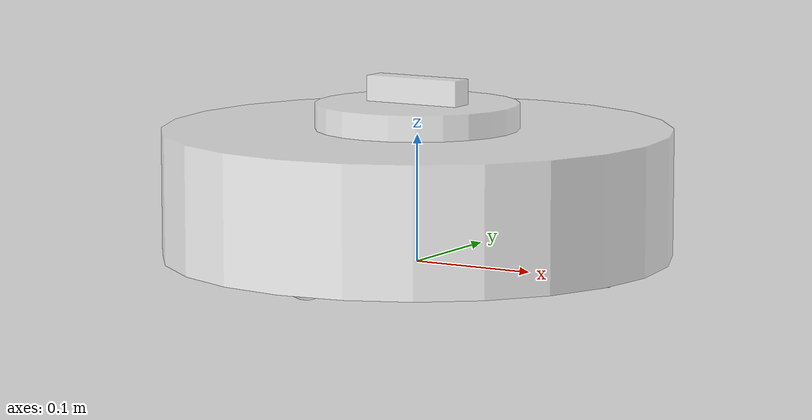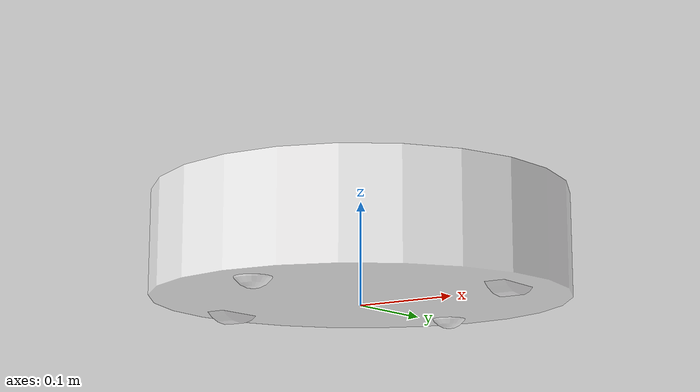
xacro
<?xml version="1.0"?>
<robot xmlns:xacro="http://www.ros.org/wiki/xacro" name="robot_name">
    <!-- 引入宏定义文件 -->
    <xacro:include filename="./item.xacro"/>

    <!-- 虚拟支撑 -->

    <xacro:linker_support
        name="support"
    />

    <!-- 主体 -->
    <xacro:linker_cylinder
        name="body"
        radius="0.2"
        length="0.1"
        origin_rpy_r="0.0"
        origin_rpy_p="0.0"
        origin_rpy_y="0.0"
        color_r="1.0"
        color_g="1.0"
        color_b="1.0"
        color_a="0.8"
        mass="0.5"
    />
    <xacro:joint_fixed
        name="body_j"
        parent="support"
        child="body"
        origin_xyz_x="0.0"
        origin_xyz_y="0.0"
        origin_xyz_z="0.055"
        origin_rpy_r="0.0"
        origin_rpy_p="0.0"
        origin_rpy_y="0.0"
    />

    <!-- 左轮 -->
    <xacro:linker_cylinder
        name="left_wheel"
        radius="0.04"
        length="0.02"
        origin_rpy_r="0.0"
        origin_rpy_p="1.57"
        origin_rpy_y="0.0"
        color_r="1.0"
        color_g="1.0"
        color_b="1.0"
        color_a="0.6"
        mass="0.04"
    />
    <xacro:joint_continuous
        name="left_wheel_j"
        parent="body"
        child="left_wheel"
        origin_xyz_x="0.16"
        origin_xyz_y="0.0"
        origin_xyz_z="-0.02"
        origin_rpy_r="0.0"
        origin_rpy_p="0.0"
        origin_rpy_y="0.0"
        axis_x="1.0"
        axis_y="0.0"
        axis_z="0.0"
    />

    <!-- 右轮 -->
    <xacro:linker_cylinder
        name="right_wheel"
        radius="0.04"
        length="0.02"
        origin_rpy_r="0.0"
        origin_rpy_p="1.57"
        origin_rpy_y="0.0"
        color_r="1.0"
        color_g="1.0"
        color_b="1.0"
        color_a="0.6"
        mass="0.04"
    />
    <xacro:joint_continuous
        name="right_wheel_j"
        parent="body"
        child="right_wheel"
        origin_xyz_x="-0.16"
        origin_xyz_y="0.0"
        origin_xyz_z="-0.02"
        origin_rpy_r="0.0"
        origin_rpy_p="0.0"
        origin_rpy_y="0.0"
        axis_x="1.0"
        axis_y="0.0"
        axis_z="0.0"
    />

    <!-- 前万向轮 -->
    <xacro:linker_sphere
        name="front_wheel"
        radius="0.02"
        color_r="1.0"
        color_g="1.0"
        color_b="1.0"
        color_a="0.5"
        mass="0.02"
    />
    <xacro:joint_fixed
        name="front_wheel_j"
        parent="body"
        child="front_wheel"
        origin_xyz_x="0.0"
        origin_xyz_y="0.16"
        origin_xyz_z="-0.04"
        origin_rpy_r="0.0"
        origin_rpy_p="0.0"
        origin_rpy_y="0.0"
    />

    <!-- 后万向轮 -->
    <xacro:linker_sphere
        name="back_wheel"
        radius="0.02"
        color_r="1.0"
        color_g="1.0"
        color_b="1.0"
        color_a="0.5"
        mass="0.02"
    />
    <xacro:joint_fixed
        name="back_wheel_j"
        parent="body"
        child="back_wheel"
        origin_xyz_x="0.0"
        origin_xyz_y="-0.16"
        origin_xyz_z="-0.04"
        origin_rpy_r="0.0"
        origin_rpy_p="0.0"
        origin_rpy_y="0.0"
    />

    <!-- IMU -->
    <xacro:linker_box
        name="imu"
        length="0.04"
        width="0.02"
        height="0.01"
        color_r="1.0"
        color_g="1.0"
        color_b="1.0"
        color_a="0.6"
        mass="0.02"
    />
    <xacro:joint_fixed
        name="imu_j"
        parent="body"
        child="imu"
        origin_xyz_x="0.0"
        origin_xyz_y="0.0"
        origin_xyz_z="0.04"
        origin_rpy_r="0.0"
        origin_rpy_p="0.0"
        origin_rpy_y="0.0"
    />

    <!-- 雷达 -->
    <xacro:linker_cylinder
        name="laser"
        radius="0.08"
        length="0.02"
        origin_rpy_r="0.0"
        origin_rpy_p="0.0"
        origin_rpy_y="0.0"
        color_r="1.0"
        color_g="1.0"
        color_b="1.0"
        color_a="0.6"
        mass="0.08"
    />
    <xacro:joint_fixed
        name="laser_j"
        parent="body"
        child="laser"
        origin_xyz_x="0.0"
        origin_xyz_y="0.0"
        origin_xyz_z="0.06"
        origin_rpy_r="0.0"
        origin_rpy_p="0.0"
        origin_rpy_y="0.0"
    />

    <!-- 深度相机 -->
    <xacro:linker_box
        name="camera"
        length="0.02"
        width="0.08"
        height="0.02"
        color_r="1.0"
        color_g="1.0"
        color_b="1.0"
        color_a="0.6"
        mass="0.08"
    />
    <xacro:joint_fixed
        name="camera_j"
        parent="body"
        child="camera"
        origin_xyz_x="0.0"
        origin_xyz_y="0.0"
        origin_xyz_z="0.08"
        origin_rpy_r="0.0"
        origin_rpy_p="0.0"
        origin_rpy_y="-1.57"
    />

    <!-- 深度相机视角修正 -->
    <xacro:linker_support
        name="camera_optical"
    />
    <xacro:joint_fixed
        name="camera_optical_j"
        parent="body"
        child="camera_optical"
        origin_xyz_x="0.0"
        origin_xyz_y="0.0"
        origin_xyz_z="0.08"
        origin_rpy_r="-1.57"
        origin_rpy_p="0.0"
        origin_rpy_y="-3.14"
    />

    <!-- 差速控制 -->
    <xacro:diffdriver
        name="diffdriver"
        namespace="/"
        left_joint="left_wheel_j"
        right_joint="right_wheel_j"
        wheel_separation="0.32"
        wheel_diameter="0.04"
        odometry_frame="odom"
        robot_base_frame="support"
    />

    <!-- IMU -->
    <xacro:imudriver
        reference="imu"
        name="imu"
        namespace="/"
    />

    <!-- 激光雷达 -->
    <xacro:laserdriver
        reference="laser"
        name="laser"
        pose_r="0.0"
        pose_p="0.0"
        pose_y="0.0"
        namespace="/"
        frame_name="laser"
    />

    <!-- 深度相机 -->
    <xacro:cameradriver
        reference="camera"
        name="camera"
        namespace="/"
        frame_name="camera_optical"
    />

</robot>

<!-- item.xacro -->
<robot xmlns:xacro="http://www.ros.org/wiki/xacro" name="robot_name">

  <!-- 宏定义：支撑 -->
  <xacro:macro name="linker_support" params="name">
    <!-- 零件描述 -->
    <link name="${name}">
      <!-- 外观描述 -->
      <visual>
        <!-- 相对坐标系 -->
        <origin xyz="0.0 0.0 0.0" rpy="0.0 0.0 0.0"/>
        <!-- 几何形状 -->
        <geometry>
          <!-- 长方体 -->
          <box size="0.0 0.0 0.0"/>
        </geometry>
        <!-- 材质 -->
        <material name="material_${name}">
          <!-- 颜色 -->
          <color rgba="0.0 0.0 0.0 0.0"/>
        </material>
      </visual>
    </link>
  </xacro:macro>

  <!-- 宏定义：方形零件 -->
  <xacro:macro name="linker_box" params="name length width height color_r color_g color_b color_a mass">
    <!-- 零件描述 -->
    <link name="${name}">
      <!-- 外观描述 -->
      <visual>
        <!-- 相对坐标系 -->
        <origin xyz="0.0 0.0 0.0" rpy="0.0 0.0 0.0"/>
        <!-- 几何形状 -->
        <geometry>
          <!-- 长方体 -->
          <box size="${length} ${width} ${height}"/>
        </geometry>
        <!-- 材质 -->
        <material name="material_${name}">
          <!-- 颜色 -->
          <color rgba="${color_r} ${color_g} ${color_b} ${color_a}"/>
        </material>
      </visual>
      <!-- 物理描述 -->
      <collision>
        <!-- 相对坐标系 -->
        <origin xyz="0.0 0.0 0.0" rpy="0.0 0.0 0.0"/>
        <!-- 几何形状 -->
        <geometry>
          <!-- 长方体 -->
          <box size="${length} ${width} ${height}"/>
        </geometry>
        <!-- 材质 -->
        <material name="material_${name}">
          <!-- 颜色 -->
          <color rgba="${color_r} ${color_g} ${color_b} ${color_a}"/>
        </material>
      </collision>
      <!-- 物理属性 -->
      <inertial>
        <mass value="${mass}"/>
        <inertia ixx="${(mass/12)*(height*height+width*width)}" ixy="0.0" ixz="0.0" iyy="${(mass/12)*(length*length+width*width)}" iyz="0.0" izz="${(mass/12)*(length*length+height*height)}"/>
      </inertial>
    </link>
  </xacro:macro>

  <!-- 宏定义：圆柱形零件 -->
  <xacro:macro name="linker_cylinder" params="name radius length origin_rpy_r origin_rpy_p origin_rpy_y color_r color_g color_b color_a mass">
    <!-- 零件描述 -->
    <link name="${name}">
      <!-- 外观描述 -->
      <visual>
        <!-- 相对坐标系 -->
        <origin xyz="0.0 0.0 0.0" rpy="${origin_rpy_r} ${origin_rpy_p} ${origin_rpy_y}"/>
        <!-- 几何形状 -->
        <geometry>
          <!-- 圆柱体 -->
          <cylinder radius="${radius}" length="${length}"/>
        </geometry>
        <!-- 材质 -->
        <material name="material_${name}">
          <!-- 颜色 -->
          <color rgba="${color_r} ${color_g} ${color_b} ${color_a}"/>
        </material>
      </visual>
      <!-- 物理描述 -->
      <collision>
        <!-- 相对坐标系 -->
        <origin xyz="0.0 0.0 0.0" rpy="${origin_rpy_r} ${origin_rpy_p} ${origin_rpy_y}"/>
        <!-- 几何形状 -->
        <geometry>
          <!-- 圆柱体 -->
          <cylinder radius="${radius}" length="${length}"/>
        </geometry>
        <!-- 材质 -->
        <material name="material_${name}">
          <!-- 颜色 -->
          <color rgba="${color_r} ${color_g} ${color_b} ${color_a}"/>
        </material>
      </collision>
      <!-- 物理属性 -->
      <inertial>
        <mass value="${mass}"/>
        <inertia ixx="${(mass/12)*(3*radius*radius+length*length)}" ixy="0.0" ixz="0.0" iyy="${(mass/12)*(3*radius*radius+length*length)}" iyz="0.0" izz="${(mass/2)*(radius*radius)}"/>
      </inertial>
    </link>
  </xacro:macro>

  <!-- 宏定义：球形零件 -->
  <xacro:macro name="linker_sphere" params="name radius color_r color_g color_b color_a mass">
    <!-- 零件描述 -->
    <link name="${name}">
      <!-- 外观描述 -->
      <visual>
        <!-- 相对坐标系 -->
        <origin xyz="0.0 0.0 0.0" rpy="0.0 0.0 0.0"/>
        <!-- 几何形状 -->
        <geometry>
          <!-- 球体 -->
          <sphere radius="${radius}"/>
        </geometry>
        <!-- 材质 -->
        <material name="material_${name}">
          <!-- 颜色 -->
          <color rgba="${color_r} ${color_g} ${color_b} ${color_a}"/>
        </material>
      </visual>
      <!-- 物理描述 -->
      <collision>
        <!-- 相对坐标系 -->
        <origin xyz="0.0 0.0 0.0" rpy="0.0 0.0 0.0"/>
        <!-- 几何形状 -->
        <geometry>
          <!-- 球体 -->
          <sphere radius="${radius}"/>
        </geometry>
        <!-- 材质 -->
        <material name="material_${name}">
          <!-- 颜色 -->
          <color rgba="${color_r} ${color_g} ${color_b} ${color_a}"/>
        </material>
      </collision>
      <!-- 物理属性 -->
      <inertial>
        <mass value="${mass}"/>
        <inertia ixx="${(2/5)*mass*(radius*radius)}" ixy="0.0" ixz="0.0" iyy="${(2/5)*mass*(radius*radius)}" iyz="0.0" izz="${(2/5)*mass*(radius*radius)}"/>
      </inertial>
    </link>
  </xacro:macro>

  <!-- 宏定义：固定连接 -->
  <xacro:macro name="joint_fixed" params="name parent child origin_xyz_x origin_xyz_y origin_xyz_z origin_rpy_r origin_rpy_p origin_rpy_y">
  <!-- 固定连接 -->
    <joint name="${name}" type="fixed">
        <!-- 父对象 -->
        <parent link="${parent}"/>
        <!-- 子对象 -->
        <child link="${child}"/>
        <!-- 固定位置 -->
        <origin xyz="${origin_xyz_x} ${origin_xyz_y} ${origin_xyz_z}" rpy="${origin_rpy_r} ${origin_rpy_p} ${origin_rpy_y}"/>
    </joint>
  </xacro:macro>

  <!-- 宏定义：连续连接 -->
  <xacro:macro name="joint_continuous" params="name parent child origin_xyz_x origin_xyz_y origin_xyz_z origin_rpy_r origin_rpy_p origin_rpy_y axis_x axis_y axis_z">
  <!-- 连续连接 -->
    <joint name="${name}" type="continuous">
        <!-- 父对象 -->
        <parent link="${parent}"/>
        <!-- 子对象 -->
        <child link="${child}"/>
        <!-- 固定位置 -->
        <origin xyz="${origin_xyz_x} ${origin_xyz_y} ${origin_xyz_z}" rpy="${origin_rpy_r} ${origin_rpy_p} ${origin_rpy_y}"/>
        <!-- 旋转轴 -->
        <axis xyz="${axis_x} ${axis_y} ${axis_z}"/>
    </joint>
  </xacro:macro>

  <!-- 宏定义：差速控制 -->
  <xacro:macro name="diffdriver" params="name namespace left_joint right_joint wheel_separation wheel_diameter odometry_frame robot_base_frame">
    <!-- 差速控制 -->
    <gazebo>
      <!-- Gazebo差速控制插件 -->
      <plugin name="gazebo_ros_diff_drive_${name}" filename="libgazebo_ros_diff_drive.so">
        <!-- ROS通信配置 -->
        <ros>
          <!-- 设置命名空间 -->
          <namespace>${namespace}</namespace>
        </ros>
        <!-- 更新频率 -->
        <update_rate>100</update_rate>
        <!-- 左轮joint名称 -->
        <left_joint>${left_joint}</left_joint>
        <!-- 右轮joint名称 -->
        <right_joint>${right_joint}</right_joint>
        <!-- 两轮中心距离 -->
        <wheel_separation>${wheel_separation}</wheel_separation>
        <!-- 轮子半径 -->
        <wheel_diameter>${wheel_diameter}</wheel_diameter>
        <!-- 轮子的最大扭矩 -->
        <max_wheel_torque>20</max_wheel_torque>
        <!-- 轮子的最大角加速度 -->
        <max_wheel_acceleration>1.0</max_wheel_acceleration>
        <!-- 命令话题名称 -->
        <command_topic>cmd_vel</command_topic>
        <!-- 是否发布里程计 -->
        <publish_odom>true</publish_odom>
        <!-- 是否发布里程计tf -->
        <publish_odom_tf>true</publish_odom_tf>
        <!-- 是否发布轮子tf -->
        <publish_wheel_tf>true</publish_wheel_tf>
        <!-- 里程计话题名称 -->
        <odometry_topic>odom</odometry_topic>
        <!-- 里程计坐标系 -->
        <odometry_frame>${odometry_frame}</odometry_frame>
        <!-- 机器人坐标系 -->
        <robot_base_frame>${robot_base_frame}</robot_base_frame>
      </plugin>
    </gazebo>
  </xacro:macro>

  <!-- 宏定义：激光雷达 -->
  <xacro:macro name="laserdriver" params="reference name pose_r pose_p pose_y namespace frame_name">
    <!-- 绑定到模型 -->
    <gazebo reference="${reference}">
      <!-- 类型和名称 -->
      <sensor type="ray" name="${name}">
        <!-- 挂载姿态 -->
        <pose>0 0 0 ${pose_r} ${pose_p} ${pose_y}</pose>
        <!-- 可视化射线 -->
        <visualize>true</visualize>
        <!-- 刷新频率 -->
        <update_rate>100</update_rate>
        <!-- 雷达配置 -->
        <ray>
          <scan>
            <horizontal>
              <!-- 采样点数量 -->
              <samples>720</samples>
              <!-- 分辨率 -->
              <resolution>1</resolution>
              <!-- 扫描的最小角度 -->
              <min_angle>0</min_angle>
              <!-- 扫描的最大角度 -->
              <max_angle>6.28</max_angle>
            </horizontal>
          </scan>
          <!-- 测距范围配置 -->
          <range>
            <!-- 最小测量距离 -->
            <min>0.10</min>
            <!-- 最大测量距离 -->
            <max>20.0</max>
            <!-- 分辨率 -->
            <resolution>0.01</resolution>
          </range>
          <!-- 噪声模型 -->
          <noise>
            <!-- 噪声类型 -->
            <type>gaussian</type>
            <!-- 噪声均值 -->
            <mean>0.0</mean>
            <!-- 噪声强度 -->
            <stddev>0.01</stddev>
          </noise>
        </ray>
        <!-- Gazebo激光雷达插件 -->
        <plugin name="libgazebo_ros_ray_sensor_${name}" filename="libgazebo_ros_ray_sensor.so">
          <!-- ROS通信配置 -->
          <ros>
            <!-- 命名空间 -->
            <namespace>${namespace}</namespace>
            <!-- 话题重映射-->
            <remapping>~/out:=laserscan</remapping>
          </ros>
          <!-- 输出数据类型 -->
          <output_type>sensor_msgs/LaserScan</output_type>
          <!-- 最小强度阈值 -->
          <min_intensity>100.0</min_intensity>
          <!-- 坐标系名称 -->
          <frame_name>${frame_name}</frame_name>
        </plugin>
      </sensor>
    </gazebo>
  </xacro:macro>

  <!-- 宏定义：IMU -->
  <xacro:macro name="imudriver" params="reference name namespace">
    <!-- 绑定到模型 -->
    <gazebo reference="${reference}">
      <!-- 启用重力 -->
      <gravity>true</gravity>
      <!-- 类型和名称 -->
      <sensor name="${name}" type="imu">
        <!-- 保持打开 -->
        <always_on>true</always_on>
        <!-- 刷新率 -->
        <update_rate>1000</update_rate>
        <!-- GazeboIMU插件 -->
        <plugin name="libgazebo_ros_imu_sensor_${name}" filename="libgazebo_ros_imu_sensor.so">
          <!-- ROS通信配置 -->
          <ros>
            <!-- 命名空间 -->
            <namespace>${namespace}</namespace>
            <!-- 话题重映射-->
            <remapping>~/out:=imu</remapping>
          </ros>
        </plugin>
        <!-- IMU配置 -->
        <imu>
          <!-- 陀螺仪噪声 -->
          <angular_velocity>
            <x>
              <noise type="gaussian">
                <mean>0.0</mean>
                <stddev>2e-4</stddev>
                <bias_mean>0.0000075</bias_mean>
                <bias_stddev>0.0000008</bias_stddev>
              </noise>
            </x>
            <y>
              <noise type="gaussian">
                <mean>0.0</mean>
                <stddev>2e-4</stddev>
                <bias_mean>0.0000075</bias_mean>
                <bias_stddev>0.0000008</bias_stddev>
              </noise>
            </y>
            <z>
              <noise type="gaussian">
                <mean>0.0</mean>
                <stddev>2e-4</stddev>
                <bias_mean>0.0000075</bias_mean>
                <bias_stddev>0.0000008</bias_stddev>
              </noise>
            </z>
          </angular_velocity>
          <!-- 加速度计噪声 -->
          <linear_acceleration>
            <x>
              <noise type="gaussian">
                <mean>0.0</mean>
                <stddev>1.7e-2</stddev>
                <bias_mean>0.1</bias_mean>
                <bias_stddev>0.001</bias_stddev>
              </noise>
            </x>
            <y>
              <noise type="gaussian">
                <mean>0.0</mean>
                <stddev>1.7e-2</stddev>
                <bias_mean>0.1</bias_mean>
                <bias_stddev>0.001</bias_stddev>
              </noise>
            </y>
            <z>
              <noise type="gaussian">
                <mean>0.0</mean>
                <stddev>1.7e-2</stddev>
                <bias_mean>0.1</bias_mean>
                <bias_stddev>0.001</bias_stddev>
              </noise>
            </z>
          </linear_acceleration>
        </imu>
      </sensor>
    </gazebo>
  </xacro:macro>

  <!-- 宏定义：深度相机 -->
  <xacro:macro name="cameradriver" params="reference name namespace frame_name">
    <!-- 绑定到模型 -->
    <gazebo reference="${reference}">
      <!-- 类型和名称 -->
      <sensor name="${name}" type="depth">
        <!-- 刷新频率 -->
        <update_rate>30</update_rate>
        <!-- 相机配置 -->
        <camera>
          <!-- 水平视场角 -->
          <horizontal_fov>1.047198</horizontal_fov>
          <!-- 图像配置 -->
          <image>
            <!-- 图像宽度 -->
            <width>1280</width>
            <!-- 图像高度 -->
            <height>720</height>
            <!-- 图像颜色格式 -->
            <format>R8G8B8</format>
          </image>
          <!-- 相机裁剪 -->
          <clip>
            <!-- 最近可见距离 -->
            <near>0.05</near>
            <!-- 最远可见距离 -->
            <far>5</far>
          </clip>
        </camera>
        <!-- Gazebo深度相机插件 -->
        <plugin name="libgazebo_ros_camera_${name}" filename="libgazebo_ros_camera.so">
          <!-- ROS通信配置 -->
          <ros>
            <!-- 命名空间 -->
            <namespace>${namespace}</namespace>
            <!-- 话题重映射-->
            <remapping>image_raw:=custom_img</remapping>
            <remapping>camera_info:=custom_info</remapping>
            <remapping>image_trigger:=custom_trigger</remapping>
          </ros>
          <!-- 相机名称 -->
          <camera_name>${name}</camera_name>
          <!-- 坐标系名称 -->
          <frame_name>${frame_name}</frame_name>
          <!-- 触发模式 -->
          <triggered>false</triggered>
          <!-- 基线距离 -->
          <hack_baseline>0.07</hack_baseline>
        </plugin>
      </sensor>
    </gazebo>
  </xacro:macro>

</robot>
